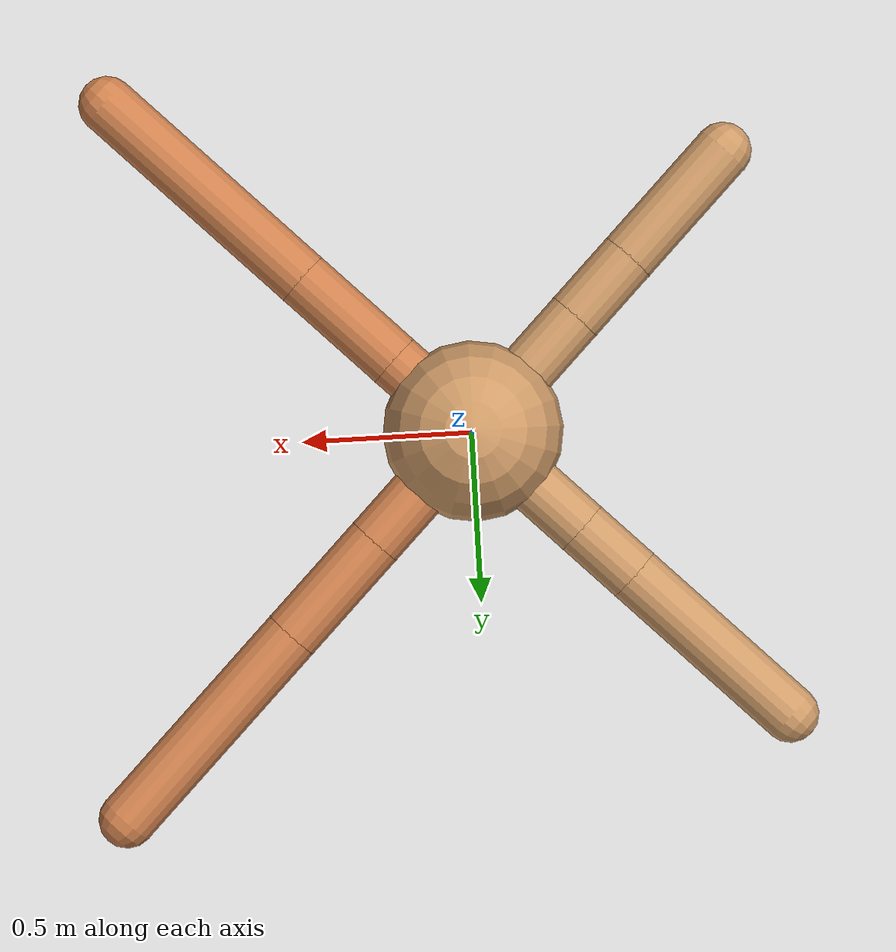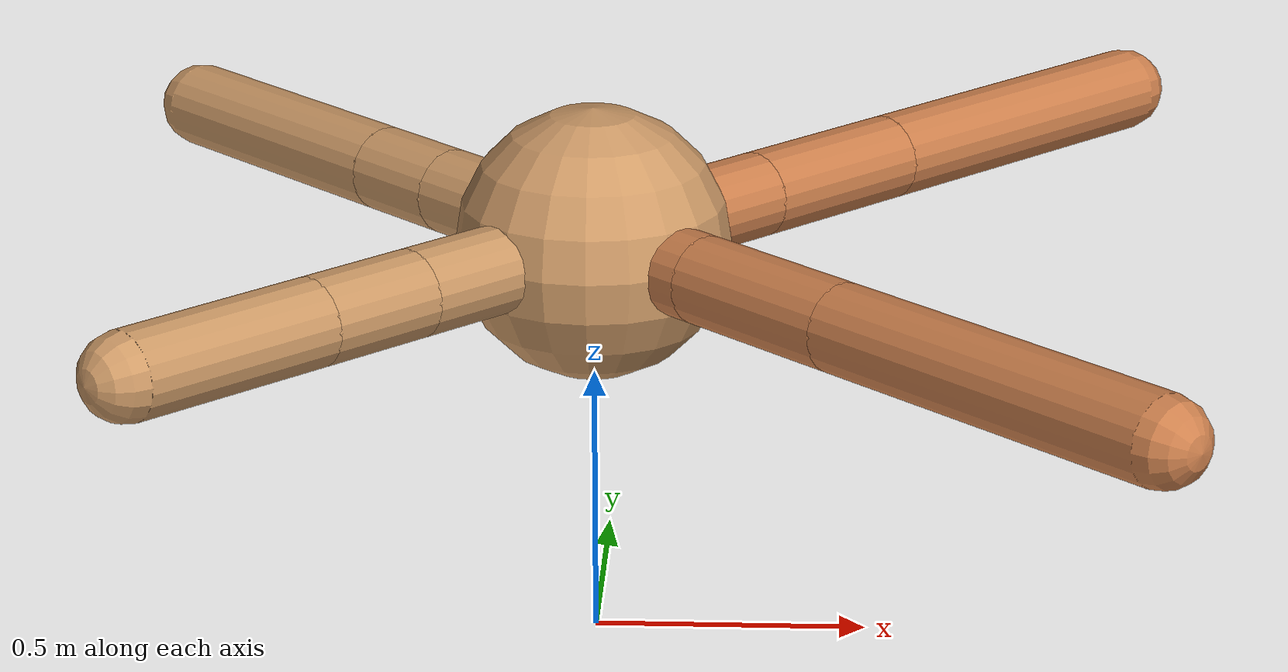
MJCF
<mujoco model="ant">
  <compiler angle="degree" coordinate="local" inertiafromgeom="true" />
  <option integrator="RK4" timestep="0.01" />
  <custom>
    <numeric data="0.0 0.0 0.55 1.0 0.0 0.0 0.0 0.0 1.0 0.0 -1.0 0.0 -1.0 0.0 1.0" name="init_qpos" />
  </custom>
  <default>
    <joint armature="1" damping="1" limited="true" />
    <geom conaffinity="0" condim="3" density="5.0" friction="1.5 0.1 0.1" margin="0.01" rgba="0.8 0.6 0.4 1" />
  </default>
  <worldbody>
    <body name="torso" pos="0 0 0.75">
      <geom name="torso_geom" pos="0 0 0" size="0.25" type="sphere" />

      <body name="front_left_leg" pos="0 0 0">
        <geom fromto="0.0 0.0 0.0 0.2884897705818423 0.2884897705818423 0.0" name="aux_1_geom" size="0.08" type="capsule" rgba=".8 .5 .3 1" />
        <body name="aux_1" pos="0.2884897705818423 0.2884897705818423 0.0">
          <joint axis="0 0 1" name="hip_1" pos="0.0 0.0 0.0" range="-40 40" type="hinge" />
          <geom fromto="0.0 0.0 0.0 0.24388836827552957 0.24388836827552957 0.0" name="left_leg_geom" size="0.08" type="capsule" rgba=".8 .5 .3 1" />
          <body pos="0.24388836827552957 0.24388836827552957 0.0" name="front_left_foot">
            <joint axis="-1 1 0" name="ankle_1" pos="0.0 0.0 0.0" range="30 100" type="hinge" />
            <geom fromto="0.0 0.0 0.0 0.48208354858097047 0.48208354858097047 0.0" name="left_ankle_geom" size="0.08" type="capsule" rgba=".8 .5 .3 1" />
          </body>
        </body>
      </body>
      <body name="front_right_leg" pos="0 0 0">
        <geom fromto="0.0 0.0 0.0 -0.28340679636758254 0.28340679636758254 0.0" name="aux_2_geom" size="0.08" type="capsule" />
        <body name="aux_2" pos="-0.28340679636758254 0.28340679636758254 0.0">
          <joint axis="0 0 1" name="hip_2" pos="0.0 0.0 0.0" range="-40 40" type="hinge" />
          <geom fromto="0.0 0.0 0.0 -0.1371389016924987 0.1371389016924987 0.0" name="right_leg_geom" size="0.08" type="capsule" />
          <body pos="-0.1371389016924987 0.1371389016924987 0.0" name="front_right_foot">
            <joint axis="1 1 0" name="ankle_2" pos="0.0 0.0 0.0" range="-100 -30" type="hinge" />
            <geom fromto="0.0 0.0 0.0 -0.4082620368911112 0.4082620368911112 0.0" name="right_ankle_geom" size="0.08" type="capsule" />
          </body>
        </body>
      </body>
      <body name="left_back_leg" pos="0 0 0">
        <geom fromto="0.0 0.0 0.0 -0.2980450738607302 -0.2980450738607302 0.0" name="aux_3_geom" size="0.08" type="capsule" />
        <body name="aux_3" pos="-0.2980450738607302 -0.2980450738607302 0.0">
          <joint axis="0 0 1" name="hip_3" pos="0.0 0.0 0.0" range="-40 40" type="hinge" />
          <geom fromto="0.0 0.0 0.0 -0.15581928366776576 -0.15581928366776576 0.0" name="back_leg_geom" size="0.08" type="capsule" />
          <body pos="-0.15581928366776576 -0.15581928366776576 0.0" name="left_back_foot">
            <joint axis="-1 1 0" name="ankle_3" pos="0.0 0.0 0.0" range="-100 -30" type="hinge" />
            <geom fromto="0.0 0.0 0.0 -0.27856435114049977 -0.27856435114049977 0.0" name="third_ankle_geom" size="0.08" type="capsule" />
          </body>
        </body>
      </body>
      <body name="right_back_leg" pos="0 0 0">
        <geom fromto="0.0 0.0 0.0 0.20585128414138254 -0.20585128414138254 0.0" name="aux_4_geom" size="0.08" type="capsule" rgba=".8 .5 .3 1" />
        <body name="aux_4" pos="0.20585128414138254 -0.20585128414138254 0.0">
          <joint axis="0 0 1" name="hip_4" pos="0.0 0.0 0.0" range="-40 40" type="hinge" />
          <geom fromto="0.0 0.0 0.0 0.23888129708594086 -0.23888129708594086 0.0" name="rightback_leg_geom" size="0.08" type="capsule" rgba=".8 .5 .3 1" />
          <body pos="0.23888129708594086 -0.23888129708594086 0.0" name="right_back_foot">
            <joint axis="1 1 0" name="ankle_4" pos="0.0 0.0 0.0" range="30 100" type="hinge" />
            <geom fromto="0.0 0.0 0.0 0.512008350268201 -0.512008350268201 0.0" name="fourth_ankle_geom" size="0.08" type="capsule" rgba=".8 .5 .3 1" />
          </body>
        </body>
      </body>
    </body>
  </worldbody>
  <actuator>
    <motor ctrllimited="true" ctrlrange="-1.0 1.0" joint="hip_4" gear="150" />
    <motor ctrllimited="true" ctrlrange="-1.0 1.0" joint="ankle_4" gear="150" />
    <motor ctrllimited="true" ctrlrange="-1.0 1.0" joint="hip_1" gear="150" />
    <motor ctrllimited="true" ctrlrange="-1.0 1.0" joint="ankle_1" gear="150" />
    <motor ctrllimited="true" ctrlrange="-1.0 1.0" joint="hip_2" gear="150" />
    <motor ctrllimited="true" ctrlrange="-1.0 1.0" joint="ankle_2" gear="150" />
    <motor ctrllimited="true" ctrlrange="-1.0 1.0" joint="hip_3" gear="150" />
    <motor ctrllimited="true" ctrlrange="-1.0 1.0" joint="ankle_3" gear="150" />
  </actuator>
</mujoco>
